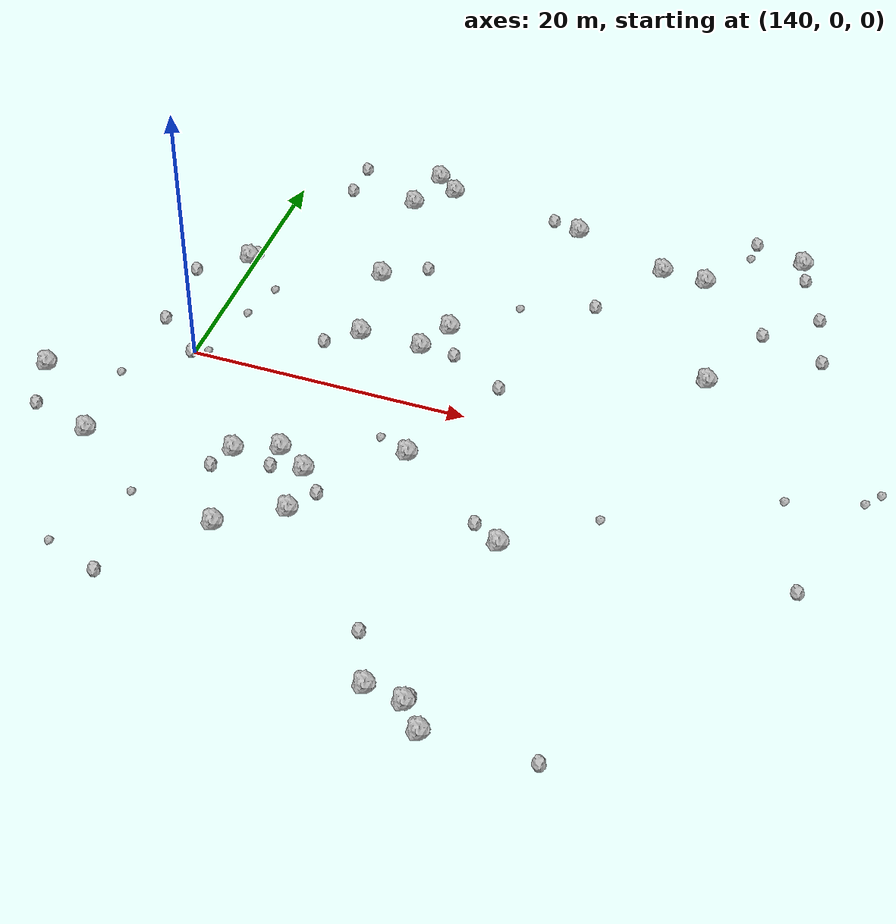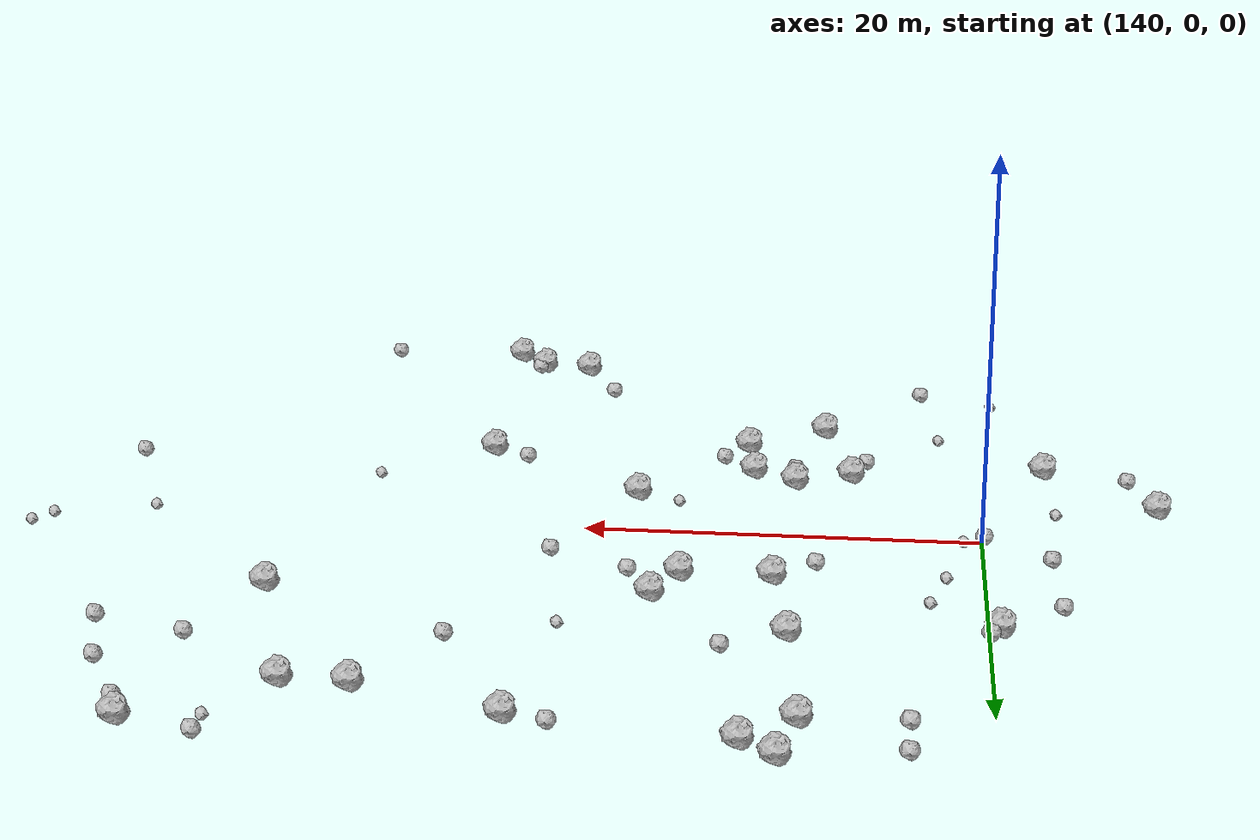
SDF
<sdf version="1.6">
 <world name="default">
  <include><uri>model://sun</uri></include>
  <model name="rock1_4_2">
   <include><uri>model://rock1</uri><pose>157.71593349289412 -4.8879012546121885 0.5 0 0 0</pose></include>
  </model>
  <model name="rock1_4_3">
   <include><uri>model://rock1</uri><pose>154.84812274064092 5.5711616968959845 0.5 0 0 0</pose></include>
  </model>
  <model name="rock1_4_4">
   <include><uri>model://rock1</uri><pose>149.3978961359079 12.175215488597907 0.5 0 0 0</pose></include>
  </model>
  <model name="rock1_4_5">
   <include><uri>model://rock1</uri><pose>178.09167528178747 23.644103825167896 0.5 0 0 0</pose></include>
  </model>
  <model name="rock1_4_6">
   <include><uri>model://rock1</uri><pose>151.81009220626066 -8.586759918322826 0.5 0 0 0</pose></include>
  </model>
  <model name="rock1_4_7">
   <include><uri>model://rock1</uri><pose>164.94754794365133 -24.941648355717692 0.5 0 0 0</pose></include>
  </model>
  <model name="rock1_4_8">
   <include><uri>model://rock1</uri><pose>166.542807544726 -26.736294074692303 0.5 0 0 0</pose></include>
  </model>
  <model name="rock1_4_9">
   <include><uri>model://rock1</uri><pose>149.58701591173153 -7.1987088872822405 0.5 0 0 0</pose></include>
  </model>
  <model name="rock1_4_10">
   <include><uri>model://rock1</uri><pose>130.9515940741492 -4.799903986558768 0.5 0 0 0</pose></include>
  </model>
  <model name="rock1_4_11">
   <include><uri>model://rock1</uri><pose>152.2494023236982 -12.38389881317946 0.5 0 0 0</pose></include>
  </model>
  <model name="rock1_4_12">
   <include><uri>model://rock1</uri><pose>148.64488520608396 21.081874674834843 0.5 0 0 0</pose></include>
  </model>
  <model name="rock1_4_13">
   <include><uri>model://rock1</uri><pose>136.50809770576186 -9.92563313035609 0.5 0 0 0</pose></include>
  </model>
  <model name="rock1_4_14">
   <include><uri>model://rock1</uri><pose>162.28207697804396 -24.520896391620962 0.5 0 0 0</pose></include>
  </model>
  <model name="rock1_4_15">
   <include><uri>model://rock1</uri><pose>166.05688516510827 -10.741376732706279 0.5 0 0 0</pose></include>
  </model>
  <model name="rock1_4_16">
   <include><uri>model://rock1</uri><pose>150.3213716057535 5.5962407978781386 0.5 0 0 0</pose></include>
  </model>
  <model name="rock1_4_17">
   <include><uri>model://rock1</uri><pose>149.44845018856458 24.739244765299844 0.5 0 0 0</pose></include>
  </model>
  <model name="rock1_4_18">
   <include><uri>model://rock1</uri><pose>139.51294730368085 10.824197893384536 0.5 0 0 0</pose></include>
  </model>
  <model name="rock1_4_19">
   <include><uri>model://rock1</uri><pose>168.59521972493468 19.4230559492428 0.5 0 0 0</pose></include>
  </model>
  <model name="rock1_4_20">
   <include><uri>model://rock1</uri><pose>161.44731723551877 21.88517407515107 0.5 0 0 0</pose></include>
  </model>
  <model name="rock1_4_21">
   <include><uri>model://rock1</uri><pose>171.8411790631212 19.250915567399126 0.5 0 0 0</pose></include>
  </model>
  <model name="rock1_4_22">
   <include><uri>model://rock1</uri><pose>174.65623629951202 8.771461184536271 0.5 0 0 0</pose></include>
  </model>
  <model name="rock1_4_23">
   <include><uri>model://rock1</uri><pose>156.07048863107798 8.193877101898352 0.5 0 0 0</pose></include>
  </model>
  <model name="rock1_4_24">
   <include><uri>model://rock1</uri><pose>151.08903305727227 23.402002656488804 0.5 0 0 0</pose></include>
  </model>
  <model name="rock1_4_25">
   <include><uri>model://rock1</uri><pose>148.1754044365754 -15.119984777922388 0.5 0 0 0</pose></include>
  </model>
  <model name="rock1_4_26">
   <include><uri>model://rock1</uri><pose>146.6516408866093 -8.384987929980198 0.5 0 0 0</pose></include>
  </model>
  <model name="rock2_4_0">
   <include><uri>model://rock2</uri><pose>145.8457469764076 -10.197808698371745 0.3 0 0 0</pose></include>
  </model>
  <model name="rock2_4_1">
   <include><uri>model://rock2</uri><pose>164.065120751324 -9.471061798140322 0.3 0 0 0</pose></include>
  </model>
  <model name="rock2_4_2">
   <include><uri>model://rock2</uri><pose>136.6545529769345 2.500528787942443 0.3 0 0 0</pose></include>
  </model>
  <model name="rock2_4_3">
   <include><uri>model://rock2</uri><pose>148.2191697846237 3.920726692556336 0.3 0 0 0</pose></include>
  </model>
  <model name="rock2_4_4">
   <include><uri>model://rock2</uri><pose>142.8361371398902 -21.351502719743987 0.3 0 0 0</pose></include>
  </model>
  <model name="rock2_4_5">
   <include><uri>model://rock2</uri><pose>173.88647878311406 -26.53687379516191 0.3 0 0 0</pose></include>
  </model>
  <model name="rock2_4_6">
   <include><uri>model://rock2</uri><pose>165.13315075640355 13.90664305974478 0.3 0 0 0</pose></include>
  </model>
  <model name="rock2_4_7">
   <include><uri>model://rock2</uri><pose>165.14475426436235 -24.381298634785107 0.3 0 0 0</pose></include>
  </model>
  <model name="rock2_4_8">
   <include><uri>model://rock2</uri><pose>177.14466889887126 14.872216304453346 0.3 0 0 0</pose></include>
  </model>
  <model name="rock2_4_9">
   <include><uri>model://rock2</uri><pose>149.594337098052 -8.946999653618349 0.3 0 0 0</pose></include>
  </model>
  <model name="rock2_4_10">
   <include><uri>model://rock2</uri><pose>159.35344138260643 22.531929465130126 0.3 0 0 0</pose></include>
  </model>
  <model name="rock2_4_11">
   <include><uri>model://rock2</uri><pose>157.3553887560149 5.545468049066841 0.3 0 0 0</pose></include>
  </model>
  <model name="rock2_4_12">
   <include><uri>model://rock2</uri><pose>152.38376836913645 13.972529003516918 0.3 0 0 0</pose></include>
  </model>
  <model name="rock2_4_13">
   <include><uri>model://rock2</uri><pose>178.66345400570435 21.858142471435457 0.3 0 0 0</pose></include>
  </model>
  <model name="rock2_4_14">
   <include><uri>model://rock2</uri><pose>180.59400505822765 17.821547612058097 0.3 0 0 0</pose></include>
  </model>
  <model name="rock2_4_15">
   <include><uri>model://rock2</uri><pose>161.38355971268726 3.3521066312181205 0.3 0 0 0</pose></include>
  </model>
  <model name="rock2_4_16">
   <include><uri>model://rock2</uri><pose>143.78374118059165 23.935247730810097 0.3 0 0 0</pose></include>
  </model>
  <model name="rock2_4_17">
   <include><uri>model://rock2</uri><pose>184.9354233213181 -8.434294211385097 0.3 0 0 0</pose></include>
  </model>
  <model name="rock2_4_18">
   <include><uri>model://rock2</uri><pose>174.36304357879203 24.85818881925713 0.3 0 0 0</pose></include>
  </model>
  <model name="rock2_4_19">
   <include><uri>model://rock2</uri><pose>181.726228120038 13.38401971152102 0.3 0 0 0</pose></include>
  </model>
  <model name="rock2_4_20">
   <include><uri>model://rock2</uri><pose>132.14458157423144 -8.625306766104355 0.3 0 0 0</pose></include>
  </model>
  <model name="rock2_4_21">
   <include><uri>model://rock2</uri><pose>160.40067144892183 -20.528866667878752 0.3 0 0 0</pose></include>
  </model>
  <model name="rock2_4_22">
   <include><uri>model://rock2</uri><pose>139.94140666126893 11.507146167710346 0.3 0 0 0</pose></include>
  </model>
  <model name="rock2_4_23">
   <include><uri>model://rock2</uri><pose>136.43068005575444 8.2729735320465 0.3 0 0 0</pose></include>
  </model>
  <model name="rock2_4_24">
   <include><uri>model://rock2</uri><pose>143.7269168254423 21.02662469707318 0.3 0 0 0</pose></include>
  </model>
  <model name="rock2_4_25">
   <include><uri>model://rock2</uri><pose>139.88283810374202 -0.17895998107740496 0.3 0 0 0</pose></include>
  </model>
  <model name="rock2_4_26">
   <include><uri>model://rock2</uri><pose>153.44139385493952 -10.294375634281813 0.3 0 0 0</pose></include>
  </model>
  <model name="rock3_4_0">
   <include><uri>model://rock3</uri><pose>160.05609373672672 11.98519274133836 0.2 0 0 0</pose></include>
  </model>
  <model name="rock3_4_1">
   <include><uri>model://rock3</uri><pose>138.8942966443274 -19.974427838012154 0.2 0 0 0</pose></include>
  </model>
  <model name="rock3_4_2">
   <include><uri>model://rock3</uri><pose>188.18766995099415 1.8026132268420731 0.2 0 0 0</pose></include>
  </model>
  <model name="rock3_4_3">
   <include><uri>model://rock3</uri><pose>142.66618832379666 8.092158063688892 0.2 0 0 0</pose></include>
  </model>
  <model name="rock3_4_4">
   <include><uri>model://rock3</uri><pose>171.5423702078383 -6.450322189585368 0.2 0 0 0</pose></include>
  </model>
  <model name="rock3_4_5">
   <include><uri>model://rock3</uri><pose>141.91120473033283 -14.197848481865304 0.2 0 0 0</pose></include>
  </model>
  <model name="rock3_4_6">
   <include><uri>model://rock3</uri><pose>174.2740742796072 23.118613748213022 0.2 0 0 0</pose></include>
  </model>
  <model name="rock3_4_7">
   <include><uri>model://rock3</uri><pose>187.32895885157433 0.6818919918933517 0.2 0 0 0</pose></include>
  </model>
  <model name="rock3_4_8">
   <include><uri>model://rock3</uri><pose>140.88880799592025 0.3055904474833788 0.2 0 0 0</pose></include>
  </model>
  <model name="rock3_4_9">
   <include><uri>model://rock3</uri><pose>136.11070661870866 -3.74559255198189 0.2 0 0 0</pose></include>
  </model>
  <model name="rock3_4_10">
   <include><uri>model://rock3</uri><pose>155.42801014893487 -3.9018516440301525 0.2 0 0 0</pose></include>
  </model>
  <model name="rock3_4_11">
   <include><uri>model://rock3</uri><pose>141.8421055010977 4.99900893309983 0.2 0 0 0</pose></include>
  </model>
  <model name="rock3_4_12">
   <include><uri>model://rock3</uri><pose>182.3373386728044 -0.8237366034805085 0.2 0 0 0</pose></include>
  </model>
 </world>
</sdf>
